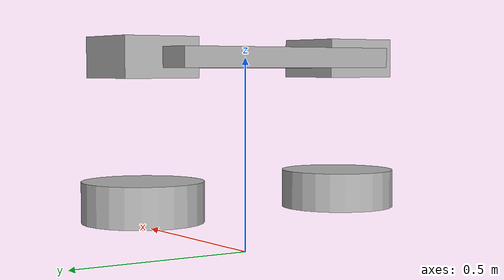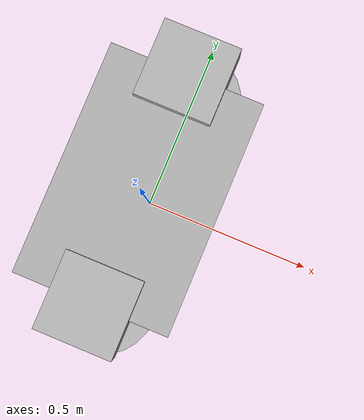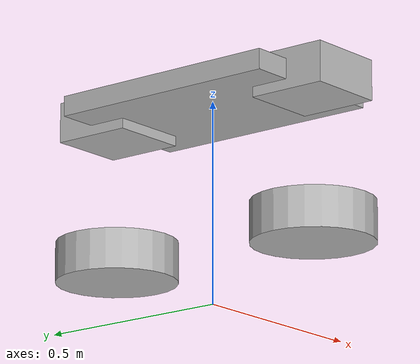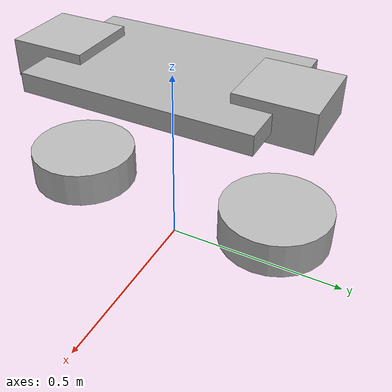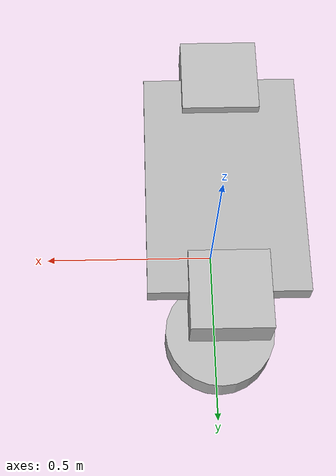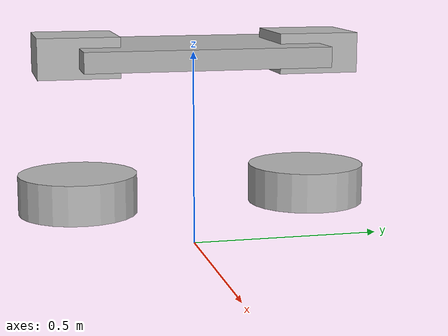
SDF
<sdf version="1.8">
  <model name="social_robot_base">
    <self_collide>false</self_collide>

    <link name="chassis">
      <pose>0 0 0.5 0 0 0</pose> <inertial>
        <mass>10.0</mass> <inertia>
          <ixx>0.5</ixx><iyy>0.5</iyy><izz>0.5</izz>
        </inertia>
      </inertial>
      <collision name="chassis_collision">
        <geometry><box><size>0.4 0.6 0.05</size></box></geometry>
      </collision>
      <visual name="visual">
        <geometry><box><size>0.4 0.6 0.05</size></box></geometry>
        <material><ambient>0.7 0.7 0.7 1</ambient><diffuse>0.7 0.7 0.7 1</diffuse></material>
      </visual>
    </link>

    <link name="body_L">
      <pose>0 0.3 0.5 0 0 0</pose>
      <inertial>
        <mass>2.0</mass> <inertia><ixx>0.1</ixx><iyy>0.1</iyy><izz>0.1</izz></inertia>
      </inertial>
      <visual name="visual">
        <geometry><box><size>0.2 0.2 0.1</size></box></geometry>
      </visual>
    </link>

    <link name="wheel_L">
      <pose>0 0.3 0.15 0 0 0</pose>
      <inertial>
        <mass>1.5</mass> <inertia><ixx>0.02</ixx><iyy>0.02</iyy><izz>0.02</izz></inertia>
      </inertial>
      <collision name="collision">
        <geometry><cylinder><radius>0.15</radius><length>0.1</length></cylinder></geometry>
      </collision>
      <visual name="visual">
        <geometry><cylinder><radius>0.15</radius><length>0.1</length></cylinder></geometry>
      </visual>
    </link>

    <link name="body_R">
      <pose>0 -0.3 0.5 0 0 0</pose>
      <inertial>
        <mass>2.0</mass>
        <inertia><ixx>0.1</ixx><iyy>0.1</iyy><izz>0.1</izz></inertia>
      </inertial>
      <visual name="visual">
        <geometry><box><size>0.2 0.2 0.1</size></box></geometry>
      </visual>
    </link>

    <link name="wheel_R">
      <pose>0 -0.3 0.15 0 0 0</pose>
      <inertial>
        <mass>1.5</mass>
        <inertia><ixx>0.02</ixx><iyy>0.02</iyy><izz>0.02</izz></inertia>
      </inertial>
      <collision name="collision">
        <geometry><cylinder><radius>0.15</radius><length>0.1</length></cylinder></geometry>
      </collision>
      <visual name="visual">
        <geometry><cylinder><radius>0.15</radius><length>0.1</length></cylinder></geometry>
      </visual>
    </link>

    <joint name="chassis_to_body_L" type="fixed"><parent>chassis</parent><child>body_L</child></joint>
    <joint name="chassis_to_body_R" type="fixed"><parent>chassis</parent><child>body_R</child></joint>

    <joint name="suspension_L" type="prismatic">
      <parent>body_L</parent>
      <child>wheel_L</child>
      <axis>
        <xyz>0 0 1</xyz>
        <limit><lower>-0.1</lower><upper>0.1</upper></limit>
        <dynamics>
          <damping>3.0</damping>

          <spring_stiffness>400.0</spring_stiffness>

          <spring_reference>0.0</spring_reference>
        </dynamics>

      </axis>
    </joint>

    <joint name="suspension_R" type="prismatic">
      <parent>body_R</parent>
      <child>wheel_R</child>
      <axis>
        <xyz>0 0 1</xyz>
        <limit><lower>-0.1</lower><upper>0.1</upper></limit>
        <dynamics>
          <damping>3.0</damping>

          <spring_stiffness>400.0</spring_stiffness>

          <spring_reference>0.0</spring_reference>
        </dynamics>

      </axis>
    </joint>

    <plugin filename="gz-sim-joint-state-publisher-system" name="gz::sim::systems::JointStatePublisher">
      <joint_name>suspension_L</joint_name>
      <joint_name>suspension_R</joint_name>
    </plugin>
  </model>
</sdf>
